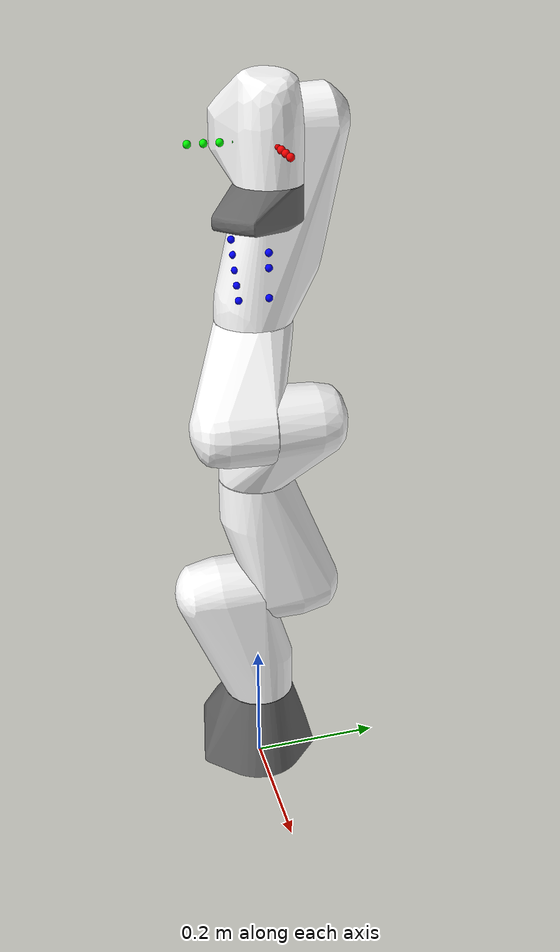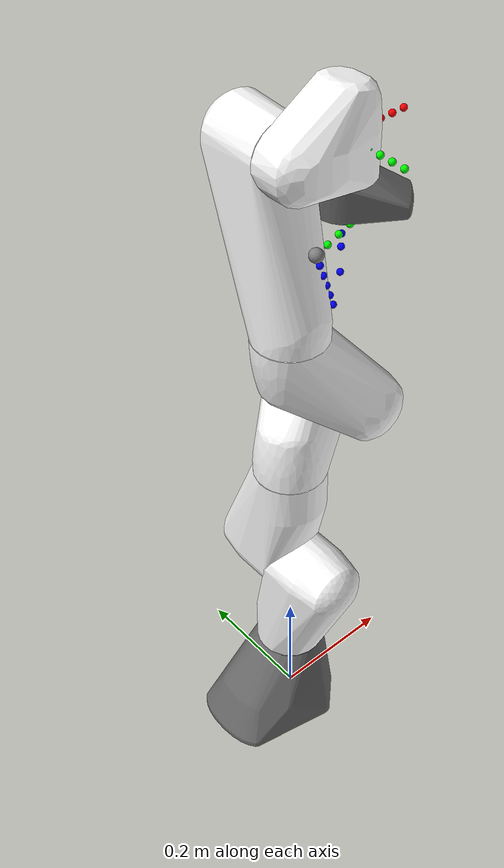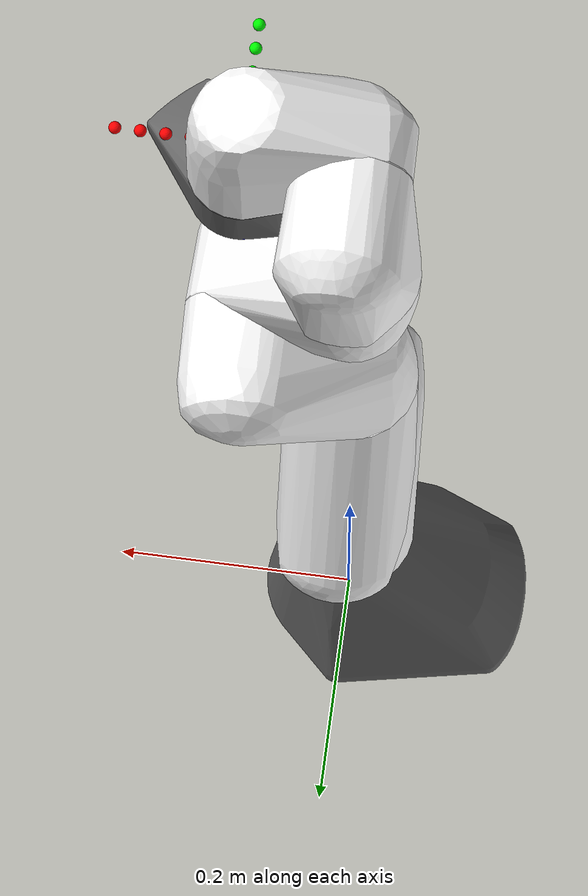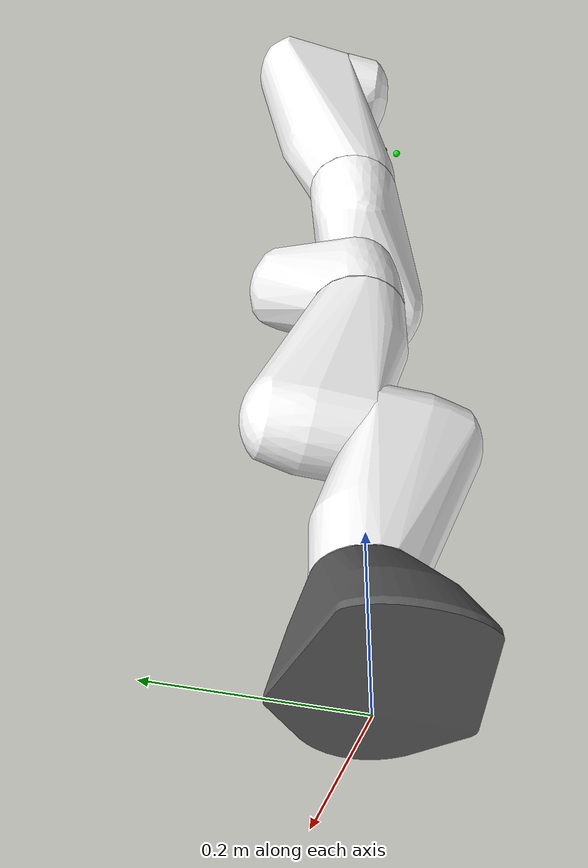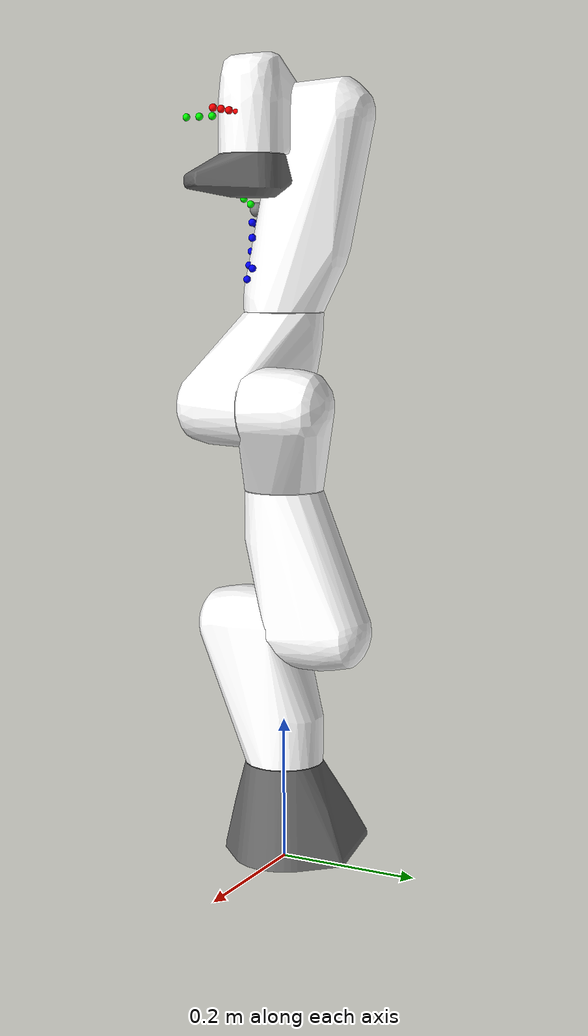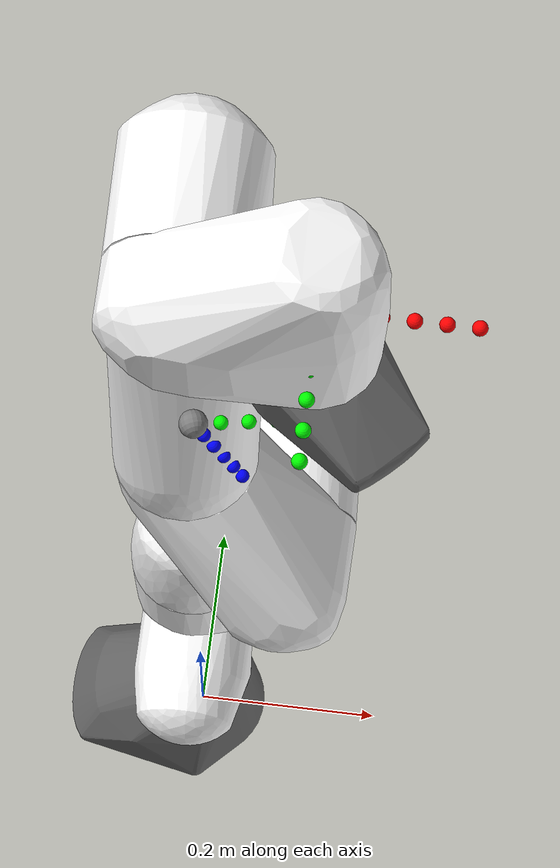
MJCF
<mujoco model="panda">
  <compiler angle="radian"/>
  <asset>
    <mesh name="link0" file="link0.obj"/>
    <mesh name="link1" file="link1.obj"/>
    <mesh name="link2" file="link2.obj"/>
    <mesh name="link3" file="link3.obj"/>
    <mesh name="link4" file="link4.obj"/>
    <mesh name="link5" file="link5.obj"/>
    <mesh name="link6" file="link6.obj"/>
    <mesh name="link7" file="link7.obj"/>
  </asset>
  <worldbody>
    <geom type="mesh" rgba="0.4 0.4 0.4 1" mesh="link0"/>
    <body name="panda_link1" pos="0 0 0.333">
      <inertial pos="0.003875 0.002081 -0.175" quat="0.711549 0.00634377 -0.0131124 0.702485" mass="4.97068" diaginertia="0.707137 0.703435 0.00852456"/>
      <joint name="panda_joint1" pos="0 0 0" axis="0 0 1" limited="true" range="-2.8973 2.8973" damping="10" frictionloss="5"/>
      <geom type="mesh" rgba="1 1 1 1" mesh="link1"/>
      <body name="panda_link2" quat="0.707107 -0.707107 0 0">
        <inertial pos="-0.003141 -0.02872 0.003495" quat="-0.168175 0.828366 -0.122878 0.520027" mass="0.646926" diaginertia="0.0310326 0.0283001 0.00273425"/>
        <joint name="panda_joint2" pos="0 0 0" axis="0 0 1" limited="true" range="-1.7628 1.7628" damping="5" frictionloss="2"/>
        <geom type="mesh" rgba="1 1 1 1" mesh="link2"/>
        <body name="panda_link3" pos="0 -0.316 0" quat="0.707107 0.707107 0 0">
          <inertial pos="0.027518 0.039252 -0.066502" quat="0.662769 -0.00678331 0.252053 0.705096" mass="3.2286" diaginertia="0.0415014 0.0414793 0.00124635"/>
          <joint name="panda_joint3" pos="0 0 0" axis="0 0 1" limited="true" range="-2.8973 2.8973" damping="5" frictionloss="2"/>
          <geom type="mesh" rgba="1 1 1 1" mesh="link3"/>
          <body name="panda_link4" pos="0.0825 0 0" quat="0.707107 0.707107 0 0">
            <inertial pos="-0.05317 0.104419 0.027454" quat="0.65058 0.529822 -0.0962034 0.535518" mass="3.5879" diaginertia="0.0349596 0.0281483 0.0106201"/>
            <joint name="panda_joint4" pos="0 0 0" axis="0 0 1" limited="true" range="-3.0718 -0.0698" damping="1" frictionloss="0.5"/>
            <geom type="mesh" rgba="1 1 1 1" mesh="link4"/>
            <body name="panda_link5" pos="-0.0825 0.384 0" quat="0.707107 -0.707107 0 0">
              <inertial pos="-0.011953 0.041065 -0.038437" quat="0.987313 -0.0121954 0.0719187 -0.141037" mass="1.22595" diaginertia="0.0367625 0.0288531 0.00803437"/>
              <joint name="panda_joint5" pos="0 0 0" axis="0 0 1" limited="true" range="-2.8973 2.8973" damping="2" frictionloss="1"/>
              <geom type="mesh" rgba="1 1 1 1" mesh="link5"/>
              <body name="panda_link6" quat="0.707107 0.707107 0 0">
                <inertial pos="0.060149 -0.014117 -0.010517" quat="0.101075 0.59332 0.0287227 0.798079" mass="1.66656" diaginertia="0.00584276 0.00431037 0.00159787"/>
                <joint name="panda_joint6" pos="0 0 0" axis="0 0 1" limited="true" range="-0.0175 3.7525" damping="1" frictionloss="0.5"/>
                <geom type="mesh" rgba="1 1 1 1" mesh="link6"/>
                <body name="panda_link7" pos="0.088 0 0" quat="0.707107 0.707107 0 0">
                  <inertial pos="0.00954601 -0.00416777 0.0622555" quat="0.993036 -0.0761889 0.0711091 -0.0549464" mass="0.7439" diaginertia="0.0127604 0.0101956 0.00459943"/>
                  <joint name="panda_joint7" pos="0 0 0" axis="0 0 1" limited="true" range="-2.8973 2.8973" damping="1" frictionloss="0.5"/>
                  <geom type="mesh" rgba="0.4 0.4 0.4 1" mesh="link7"/>
                  <geom size="0.01" pos="-0.0749644 0.033756 0.12052" quat="0.692201 -0.70121 0.128985 -0.111915"/>
                  <geom size="0.01" pos="-0.076442 -0.027301 0.119627" quat="0.692201 -0.70121 0.128985 -0.111915"/>

                  <!-- Smaller spheres to represent the local coordinate system of panda_link7 -->
                  <geom type="sphere" size="0.005" pos="0 0 0" rgba="1 0 0 1"/> <!-- Origin -->
                  <!-- Intermediate X-axis spheres -->
                  <geom type="sphere" size="0.005" pos="0.02 0 0" rgba="1 0 0 1"/>
                  <geom type="sphere" size="0.005" pos="0.04 0 0" rgba="1 0 0 1"/>
                  <geom type="sphere" size="0.005" pos="0.06 0 0" rgba="1 0 0 1"/>
                  <geom type="sphere" size="0.005" pos="0.08 0 0" rgba="1 0 0 1"/>
                  <geom type="sphere" size="0.005" pos="0.1 0 0" rgba="1 0 0 1"/> <!-- End of X-axis -->
                  <!-- Intermediate Y-axis spheres -->
                  <geom type="sphere" size="0.005" pos="0 0.02 0" rgba="0 1 0 1"/>
                  <geom type="sphere" size="0.005" pos="0 0.04 0" rgba="0 1 0 1"/>
                  <geom type="sphere" size="0.005" pos="0 0.06 0" rgba="0 1 0 1"/>
                  <geom type="sphere" size="0.005" pos="0 0.08 0" rgba="0 1 0 1"/>
                  <geom type="sphere" size="0.005" pos="0 0.1 0" rgba="0 1 0 1"/> <!-- End of Y-axis -->
                  <!-- Intermediate Z-axis spheres -->
                  <geom type="sphere" size="0.005" pos="0 0 0.02" rgba="0 0 1 1"/>
                  <geom type="sphere" size="0.005" pos="0 0 0.04" rgba="0 0 1 1"/>
                  <geom type="sphere" size="0.005" pos="0 0 0.14" rgba="0 0 1 1"/>
                  <geom type="sphere" size="0.005" pos="0 0 0.16" rgba="0 0 1 1"/>
                  <geom type="sphere" size="0.005" pos="0 0 0.2" rgba="0 0 1 1"/> <!-- End of Z-axis -->

                  <!-- Spheres for the first geometry -->
                  <body name="geom1" pos="-0.0749644 0.033756 0.12052" quat="0.692201 -0.111915  0.128984 -0.70121">
                    <geom type="sphere" size="0.005" pos="0 0 0" rgba="1 0 0 1"/> <!-- Origin -->
                    <!-- Intermediate X-axis spheres -->
                    <geom type="sphere" size="0.005" pos="0.02 0 0" rgba="1 0 0 1"/>
                    <geom type="sphere" size="0.005" pos="0.04 0 0" rgba="1 0 0 1"/>
                    <geom type="sphere" size="0.005" pos="0.06 0 0" rgba="1 0 0 1"/>
                    <geom type="sphere" size="0.005" pos="0.08 0 0" rgba="1 0 0 1"/>
                    <geom type="sphere" size="0.005" pos="0.1 0 0" rgba="1 0 0 1"/> <!-- End of X-axis -->
                    <!-- Intermediate Y-axis spheres -->
                    <geom type="sphere" size="0.005" pos="0 0.02 0" rgba="0 1 0 1"/>
                    <geom type="sphere" size="0.005" pos="0 0.04 0" rgba="0 1 0 1"/>
                    <geom type="sphere" size="0.005" pos="0 0.06 0" rgba="0 1 0 1"/>
                    <geom type="sphere" size="0.005" pos="0 0.08 0" rgba="0 1 0 1"/>
                    <geom type="sphere" size="0.005" pos="0 0.1 0" rgba="0 1 0 1"/> <!-- End of Y-axis -->
                    <!-- Intermediate Z-axis spheres -->
                    <geom type="sphere" size="0.005" pos="0 0 0.02" rgba="0 0 1 1"/>
                    <geom type="sphere" size="0.005" pos="0 0 0.04" rgba="0 0 1 1"/>
                    <geom type="sphere" size="0.005" pos="0 0 0.06" rgba="0 0 1 1"/>
                    <geom type="sphere" size="0.005" pos="0 0 0.08" rgba="0 0 1 1"/>
                    <geom type="sphere" size="0.005" pos="0 0 0.1" rgba="0 0 1 1"/> <!-- End of Z-axis -->
                  </body>
                </body>
              </body>
            </body>
          </body>
        </body>
      </body>
    </body>
  </worldbody>
</mujoco>
